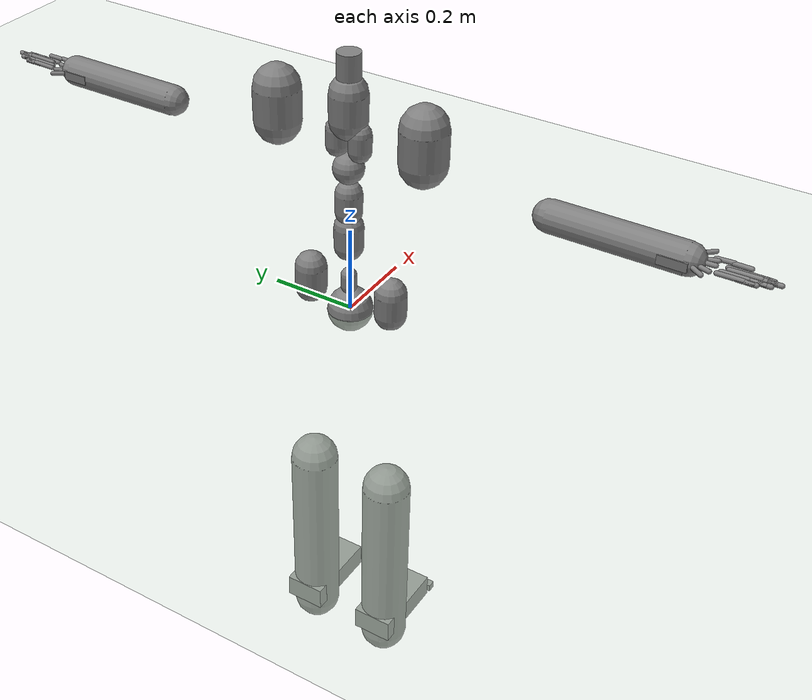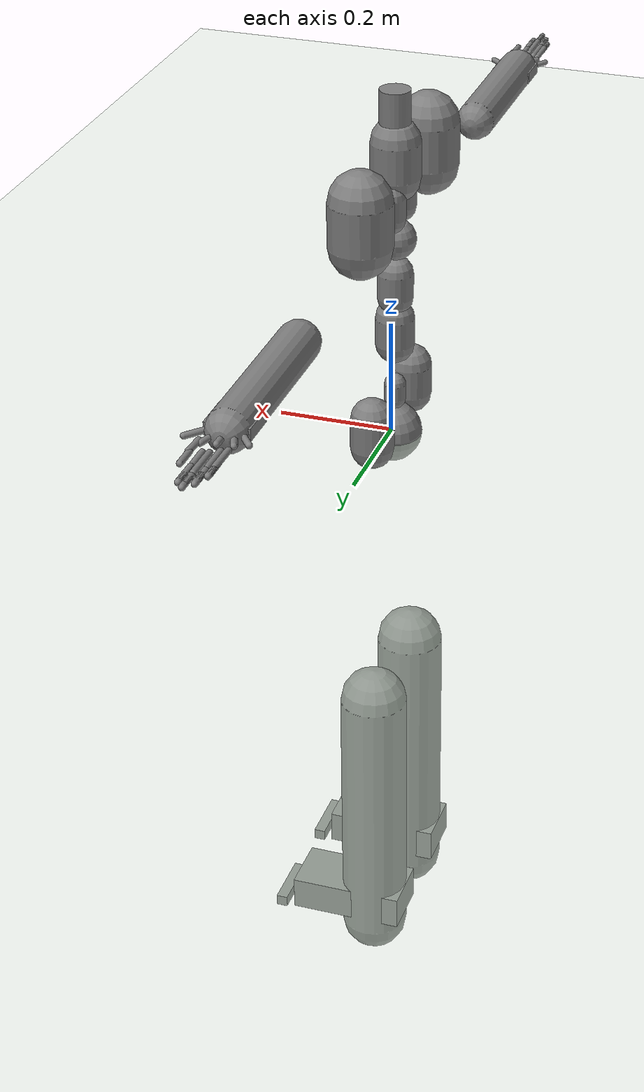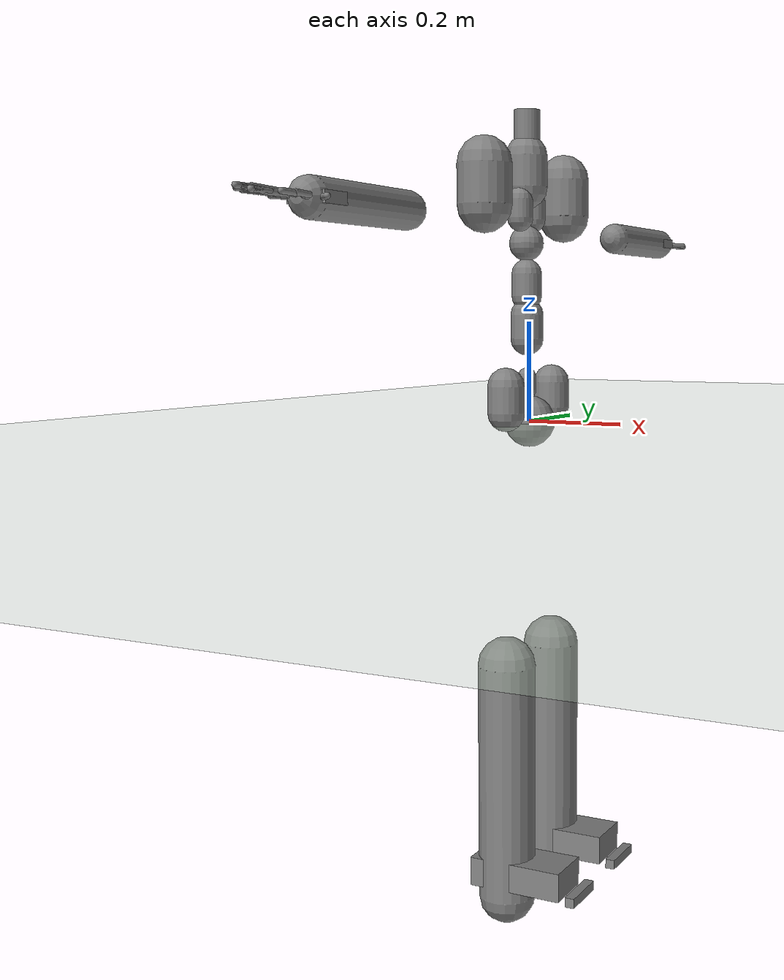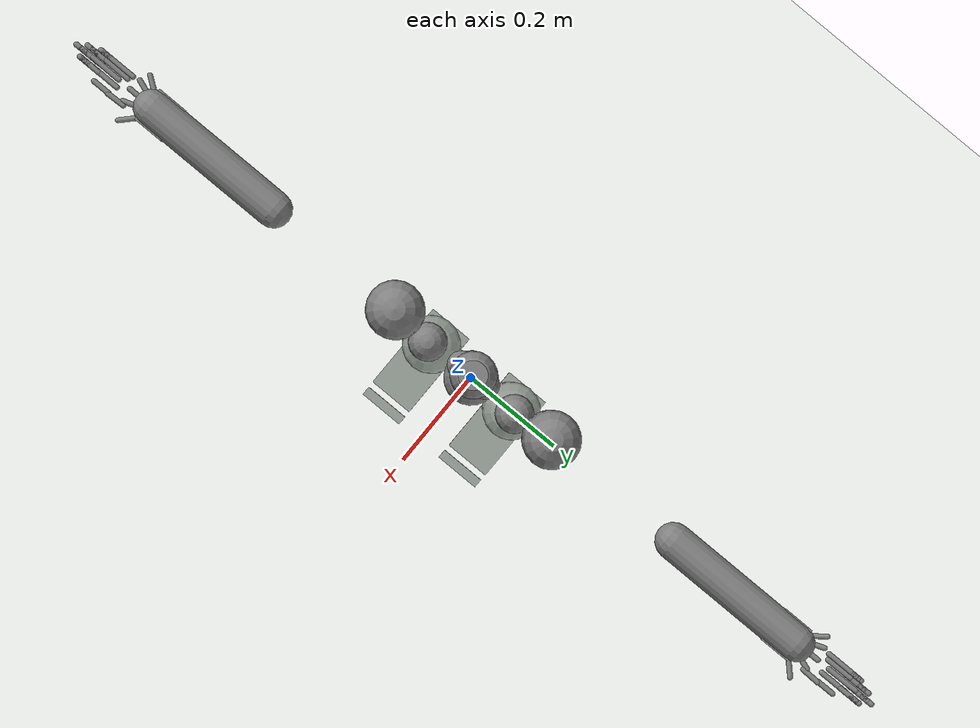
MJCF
<?xml version="1.0" ?>
<mujoco model="humanoid">
  <compiler coordinate="local"/>
  <statistic extent="2" center="0 0 1"/>
  <option timestep="0.00555"/>
  <default>
    <motor ctrlrange="-1 1" ctrllimited="true"/>
    <geom type="capsule" condim="1" friction="1.0 0.05 0.05" solimp=".9 .99 .003" solref=".015 1"/>
    <joint type="hinge" damping="0.1" stiffness="5" armature=".007" limited="true" solimplimit="0 .99 .01"/>
    <site size=".04" group="3"/>
  </default>
  <asset>
    <texture type="skybox" builtin="gradient" rgb1=".4 .5 .6" rgb2="0 0 0" width="100" height="100"/>
    <texture builtin="flat" height="1278" mark="cross" markrgb="1 1 1" name="texgeom" random="0.01" rgb1="0.8 0.6 0.4" rgb2="0.8 0.6 0.4" type="cube" width="127"/>
    <texture builtin="checker" height="100" name="texplane" rgb1="0 0 0" rgb2="0.8 0.8 0.8" type="2d" width="100"/>
    <material name="MatPlane" reflectance="0.5" shininess="1" specular="1" texrepeat="60 60" texture="texplane"/>
    <material name="geom" texture="texgeom" texuniform="true"/>
  </asset>
  <worldbody>
    <light cutoff="100" diffuse="1 1 1" dir="-0 0 -1.3" directional="true" exponent="1" pos="0 0 1.3" specular=".1 .1 .1"/>
    <geom conaffinity="1" condim="3" name="floor" pos="0 0 0" rgba="0.8 0.9 0.8 1" size="100 100 .2" type="plane" material="MatPlane"/>
    <body name="pHipOrigin" pos="0 0 0">
      <freejoint name="pHipOrigin"/>
      <geom type="sphere" contype="1" conaffinity="1" density="4629.6296296296305" size="0.05199" pos="0.0000 0.0000 -0.0000"/>
      <body name="jL5S1" pos="-0.00585868 0 0.05272800">
        <geom type="capsule" contype="1" conaffinity="1" density="1000" fromto="0 0 0.01061 0 0 0.03714" size="0.01857"/>
        <joint name="jL5S1_x" type="hinge" pos="0 0 0" axis="1 0 0" stiffness="500" damping="500" armature="0.02" range="-180.0000 180.0000"/>
        <joint name="jL5S1_y" type="hinge" pos="0 0 0" axis="0 1 0" stiffness="500" damping="500" armature="0.02" range="-180.0000 180.0000"/>
        <joint name="jL5S1_z" type="hinge" pos="0 0 0" axis="0 0 1" stiffness="500" damping="500" armature="0.02" range="-180.0000 180.0000"/>
        <body name="jL4L3" pos="0 0 0.09475293">
          <geom type="capsule" contype="1" conaffinity="1" density="1000" fromto="0 0 0.01895 0 0 0.06633" size="0.03316"/>
          <joint name="jL4L3_x" type="hinge" pos="0 0 0" axis="1 0 0" stiffness="500" damping="500" armature="0.02" range="-180.0000 180.0000"/>
          <joint name="jL4L3_y" type="hinge" pos="0 0 0" axis="0 1 0" stiffness="500" damping="500" armature="0.02" range="-180.0000 180.0000"/>
          <joint name="jL4L3_z" type="hinge" pos="0 0 0" axis="0 0 1" stiffness="500" damping="500" armature="0.02" range="-180.0000 180.0000"/>
          <body name="jL1T12" pos="-0.00066951 0 0.08677981">
            <geom type="capsule" contype="1" conaffinity="1" density="1000" fromto="0 0 0.01736 0 0 0.06075" size="0.03037"/>
            <joint name="jL1T12_x" type="hinge" pos="0 0 0" axis="1 0 0" stiffness="500" damping="500" armature="0.02" range="-180.0000 180.0000"/>
            <joint name="jL1T12_y" type="hinge" pos="0 0 0" axis="0 1 0" stiffness="500" damping="500" armature="0.02" range="-180.0000 180.0000"/>
            <joint name="jL1T12_z" type="hinge" pos="0 0 0" axis="0 0 1" stiffness="500" damping="500" armature="0.02" range="-180.0000 180.0000"/>
            <body name="jT9T8" pos="-0.00067087 0 0.08678785">
              <geom type="sphere" contype="1" conaffinity="1" density="1000" size="0.03472" pos="0.000 0.0000 0.034716"/>
              <joint name="jT9T8_x" type="hinge" pos="0 0 0" axis="1 0 0" stiffness="500" damping="500" armature="0.02" range="-180.0000 180.0000"/>
              <joint name="jT9T8_y" type="hinge" pos="0 0 0" axis="0 1 0" stiffness="500" damping="500" armature="0.02" range="-180.0000 180.0000"/>
              <joint name="jT9T8_z" type="hinge" pos="0 0 0" axis="0 0 1" stiffness="500" damping="500" armature="0.02" range="-180.0000 180.0000"/>
              <body name="jT1C7" pos="0 0 0.11972699">
                <geom type="capsule" contype="1" conaffinity="1" density="1000" fromto="0 0 0.02395 0 0 0.08381" size="0.04190"/>
                <joint name="jT1C7_x" type="hinge" pos="0 0 0" axis="1 0 0" stiffness="500" damping="500" armature="0.02" range="-180.0000 180.0000"/>
                <joint name="jT1C7_y" type="hinge" pos="0 0 0" axis="0 1 0" stiffness="500" damping="500" armature="0.02" range="-180.0000 180.0000"/>
                <joint name="jT1C7_z" type="hinge" pos="0 0 0" axis="0 0 1" stiffness="500" damping="500" armature="0.02" range="-180.0000 180.0000"/>
                <body name="jC1Head" pos="0.00101836 0 0.08631906">
                  <geom type="cylinder" contype="1" conaffinity="1" density="1000" fromto="0 0 0 0 0 0.08633" size="0.02590"/>
                  <joint name="jC1Head_x" type="hinge" pos="0 0 0" axis="1 0 0" stiffness="500" damping="500" armature="0.02" range="-180.0000 180.0000"/>
                  <joint name="jC1Head_y" type="hinge" pos="0 0 0" axis="0 1 0" stiffness="500" damping="500" armature="0.02" range="-180.0000 180.0000"/>
                  <joint name="jC1Head_z" type="hinge" pos="0 0 0" axis="0 0 1" stiffness="500" damping="500" armature="0.02" range="-180.0000 180.0000"/>
                </body>
              </body>
              <body name="jRightT4Shoulder" pos="0 -0.02771717 0.06758054">
                <geom type="capsule" contype="1" conaffinity="1" density="1000" fromto="0 0 0.01461 0 0 0.05113" size="0.02557"/>
                <joint name="jRightT4Shoulder_x" type="hinge" pos="0 0 0" axis="1 0 0" stiffness="500" damping="500" armature="0.02" range="-180.0000 180.0000"/>
                <joint name="jRightT4Shoulder_y" type="hinge" pos="0 0 0" axis="0 1 0" stiffness="500" damping="500" armature="0.02" range="-180.0000 180.0000"/>
                <joint name="jRightT4Shoulder_z" type="hinge" pos="0 0 0" axis="0 0 1" stiffness="500" damping="500" armature="0.02" range="-180.0000 180.0000"/>
                <body name="jRightShoulder" pos="0 -0.14999203 0">
                  <geom type="capsule" contype="1" conaffinity="1" density="1000" fromto="0 0 0.03000 0 0 0.10499" size="0.05250"/>
                  <joint name="jRightShoulder_x" type="hinge" pos="0 0 0" axis="1 0 0" stiffness="500" damping="500" armature="0.02" range="-180.0000 180.0000"/>
                  <joint name="jRightShoulder_y" type="hinge" pos="0 0 0" axis="0 1 0" stiffness="500" damping="500" armature="0.02" range="-180.0000 180.0000"/>
                  <joint name="jRightShoulder_z" type="hinge" pos="0 0 0" axis="0 0 1" stiffness="500" damping="500" armature="0.02" range="-180.0000 180.0000"/>
                  <body name="jRightElbow" pos="0 -0.28135192 0">
                    <geom type="capsule" contype="1" conaffinity="1" density="1000" fromto="0 0 0 0.00000000 -0.28135192 0.00000000" size="0.03376"/>
                    <joint name="jRightElbow_x" type="hinge" pos="0 0 0" axis="1 0 0" stiffness="500" damping="500" armature="0.02" range="-180.0000 180.0000"/>
                    <joint name="jRightElbow_y" type="hinge" pos="0 0 0" axis="0 1 0" stiffness="500" damping="500" armature="0.02" range="-180.0000 180.0000"/>
                    <joint name="jRightElbow_z" type="hinge" pos="0 0 0" axis="0 0 1" stiffness="500" damping="500" armature="0.02" range="-180.0000 180.0000"/>
                    <body name="jRightWrist" pos="0.00010500 -0.26088614 0">
                      <geom density="1000" type="box" pos="0 0 0" size="0.035 0.03 0.01" quat="1.0000 0.0000 0.0000 0.0000"/>
                      <joint name="jRightWrist_x" type="hinge" pos="0 0 0" axis="1 0 0" stiffness="500" damping="500" armature="0.02" range="-180.0000 180.0000"/>
                      <joint name="jRightWrist_y" type="hinge" pos="0 0 0" axis="0 1 0" stiffness="500" damping="500" armature="0.02" range="-180.0000 180.0000"/>
                      <joint name="jRightWrist_z" type="hinge" pos="0 0 0" axis="0 0 1" stiffness="500" damping="500" armature="0.02" range="-180.0000 180.0000"/>
                      <body name="jRightFirstCMC" pos="0.02750400 -0.02636413 -0.00124555">
                        <geom type="capsule" contype="1" conaffinity="1" density="1000" fromto="0 0 0 0.02750400 -0.02636413 -0.00124555" size="0.005"/>
                        <joint name="jRightFirstCMC_x" type="hinge" pos="0 0 0" axis="1 0 0" stiffness="500" damping="500" armature="0.02" range="-180.0000 180.0000"/>
                        <joint name="jRightFirstCMC_y" type="hinge" pos="0 0 0" axis="0 1 0" stiffness="500" damping="500" armature="0.02" range="-180.0000 180.0000"/>
                        <joint name="jRightFirstCMC_z" type="hinge" pos="0 0 0" axis="0 0 1" stiffness="500" damping="500" armature="0.02" range="-180.0000 180.0000"/>
                        <body name="jRightFirstMCP" pos="0.00124500 -0.03513295 0.00074236">
                          <geom type="capsule" contype="1" conaffinity="1" density="1000" fromto="0 0 0 0.00124500 -0.03513295 0.00074236" size="0.005"/>
                          <joint name="jRightFirstMCP_x" type="hinge" pos="0 0 0" axis="1 0 0" stiffness="500" damping="500" armature="0.02" range="-180.0000 180.0000"/>
                          <joint name="jRightFirstMCP_y" type="hinge" pos="0 0 0" axis="0 1 0" stiffness="500" damping="500" armature="0.02" range="-180.0000 180.0000"/>
                          <joint name="jRightFirstMCP_z" type="hinge" pos="0 0 0" axis="0 0 1" stiffness="500" damping="500" armature="0.02" range="-180.0000 180.0000"/>
                          <body name="jRightIP" pos="0 -0.03403175 0">
                            <geom type="capsule" contype="1" conaffinity="1" density="1000" fromto="0 0 0 0.00000000 -0.03403175 0.00000000" size="0.005"/>
                            <joint name="jRightIP_x" type="hinge" pos="0 0 0" axis="1 0 0" stiffness="500" damping="500" armature="0.02" range="-180.0000 180.0000"/>
                            <joint name="jRightIP_y" type="hinge" pos="0 0 0" axis="0 1 0" stiffness="500" damping="500" armature="0.02" range="-180.0000 180.0000"/>
                            <joint name="jRightIP_z" type="hinge" pos="0 0 0" axis="0 0 1" stiffness="500" damping="500" armature="0.02" range="-180.0000 180.0000"/>
                          </body>
                        </body>
                      </body>
                      <body name="jRightSecondCMC" pos="0.01170401 -0.03419542 -0.00059645">
                        <geom type="capsule" contype="1" conaffinity="1" density="1000" fromto="0 0 0 0.01170401 -0.03419542 -0.00059645" size="0.005"/>
                        <joint name="jRightSecondCMC_x" type="hinge" pos="0 0 0" axis="1 0 0" stiffness="500" damping="500" armature="0.02" range="-180.0000 180.0000"/>
                        <joint name="jRightSecondCMC_y" type="hinge" pos="0 0 0" axis="0 1 0" stiffness="500" damping="500" armature="0.02" range="-180.0000 180.0000"/>
                        <joint name="jRightSecondCMC_z" type="hinge" pos="0 0 0" axis="0 0 1" stiffness="500" damping="500" armature="0.02" range="-180.0000 180.0000"/>
                        <body name="jRightSecondMCP" pos="-0.00035664 -0.05688193 -0.00059005">
                          <geom type="capsule" contype="1" conaffinity="1" density="1000" fromto="0 0 0 -0.00035664 -0.05688193 -0.00059005" size="0.005"/>
                          <joint name="jRightSecondMCP_x" type="hinge" pos="0 0 0" axis="1 0 0" stiffness="500" damping="500" armature="0.02" range="-180.0000 180.0000"/>
                          <joint name="jRightSecondMCP_y" type="hinge" pos="0 0 0" axis="0 1 0" stiffness="500" damping="500" armature="0.02" range="-180.0000 180.0000"/>
                          <joint name="jRightSecondMCP_z" type="hinge" pos="0 0 0" axis="0 0 1" stiffness="500" damping="500" armature="0.02" range="-180.0000 180.0000"/>
                          <body name="jRightSecondPIP" pos="0 -0.04115187 0">
                            <geom type="capsule" contype="1" conaffinity="1" density="1000" fromto="0 0 0 0.00000000 -0.04115187 0.00000000" size="0.005"/>
                            <joint name="jRightSecondPIP_x" type="hinge" pos="0 0 0" axis="1 0 0" stiffness="500" damping="500" armature="0.02" range="-180.0000 180.0000"/>
                            <joint name="jRightSecondPIP_y" type="hinge" pos="0 0 0" axis="0 1 0" stiffness="500" damping="500" armature="0.02" range="-180.0000 180.0000"/>
                            <joint name="jRightSecondPIP_z" type="hinge" pos="0 0 0" axis="0 0 1" stiffness="500" damping="500" armature="0.02" range="-180.0000 180.0000"/>
                            <body name="jRightSecondDIP" pos="0 -0.02246177 0">
                              <geom type="capsule" contype="1" conaffinity="1" density="1000" fromto="0 0 0 0.00000000 -0.02246177 0.00000000" size="0.005"/>
                              <joint name="jRightSecondDIP_x" type="hinge" pos="0 0 0" axis="1 0 0" stiffness="500" damping="500" armature="0.02" range="-180.0000 180.0000"/>
                              <joint name="jRightSecondDIP_y" type="hinge" pos="0 0 0" axis="0 1 0" stiffness="500" damping="500" armature="0.02" range="-180.0000 180.0000"/>
                              <joint name="jRightSecondDIP_z" type="hinge" pos="0 0 0" axis="0 0 1" stiffness="500" damping="500" armature="0.02" range="-180.0000 180.0000"/>
                            </body>
                          </body>
                        </body>
                      </body>
                      <body name="jRightThirdCMC" pos="-0.00066439 -0.03592881 0.00151050">
                        <geom type="capsule" contype="1" conaffinity="1" density="1000" fromto="0 0 0 -0.00066439 -0.03592881 0.00151050" size="0.005"/>
                        <joint name="jRightThirdCMC_x" type="hinge" pos="0 0 0" axis="1 0 0" stiffness="500" damping="500" armature="0.02" range="-180.0000 180.0000"/>
                        <joint name="jRightThirdCMC_y" type="hinge" pos="0 0 0" axis="0 1 0" stiffness="500" damping="500" armature="0.02" range="-180.0000 180.0000"/>
                        <joint name="jRightThirdCMC_z" type="hinge" pos="0 0 0" axis="0 0 1" stiffness="500" damping="500" armature="0.02" range="-180.0000 180.0000"/>
                        <body name="jRightThirdMCP" pos="-0.00073107 -0.06056933 0.00164786">
                          <geom type="capsule" contype="1" conaffinity="1" density="1000" fromto="0 0 0 -0.00073107 -0.06056933 0.00164786" size="0.005"/>
                          <joint name="jRightThirdMCP_x" type="hinge" pos="0 0 0" axis="1 0 0" stiffness="500" damping="500" armature="0.02" range="-180.0000 180.0000"/>
                          <joint name="jRightThirdMCP_y" type="hinge" pos="0 0 0" axis="0 1 0" stiffness="500" damping="500" armature="0.02" range="-180.0000 180.0000"/>
                          <joint name="jRightThirdMCP_z" type="hinge" pos="0 0 0" axis="0 0 1" stiffness="500" damping="500" armature="0.02" range="-180.0000 180.0000"/>
                          <body name="jRightThirdPIP" pos="0 -0.04492609 0">
                            <geom type="capsule" contype="1" conaffinity="1" density="1000" fromto="0 0 0 0.00000000 -0.04492609 0.00000000" size="0.005"/>
                            <joint name="jRightThirdPIP_x" type="hinge" pos="0 0 0" axis="1 0 0" stiffness="500" damping="500" armature="0.02" range="-180.0000 180.0000"/>
                            <joint name="jRightThirdPIP_y" type="hinge" pos="0 0 0" axis="0 1 0" stiffness="500" damping="500" armature="0.02" range="-180.0000 180.0000"/>
                            <joint name="jRightThirdPIP_z" type="hinge" pos="0 0 0" axis="0 0 1" stiffness="500" damping="500" armature="0.02" range="-180.0000 180.0000"/>
                            <body name="jRightThirdDIP" pos="0 -0.02659932 0">
                              <geom type="capsule" contype="1" conaffinity="1" density="1000" fromto="0 0 0 0.00000000 -0.02659932 0.00000000" size="0.005"/>
                              <joint name="jRightThirdDIP_x" type="hinge" pos="0 0 0" axis="1 0 0" stiffness="500" damping="500" armature="0.02" range="-180.0000 180.0000"/>
                              <joint name="jRightThirdDIP_y" type="hinge" pos="0 0 0" axis="0 1 0" stiffness="500" damping="500" armature="0.02" range="-180.0000 180.0000"/>
                              <joint name="jRightThirdDIP_z" type="hinge" pos="0 0 0" axis="0 0 1" stiffness="500" damping="500" armature="0.02" range="-180.0000 180.0000"/>
                            </body>
                          </body>
                        </body>
                      </body>
                      <body name="jRightFourthCMC" pos="-0.01218839 -0.03394667 0.00079905">
                        <geom type="capsule" contype="1" conaffinity="1" density="1000" fromto="0 0 0 -0.01218839 -0.03394667 0.00079905" size="0.005"/>
                        <joint name="jRightFourthCMC_x" type="hinge" pos="0 0 0" axis="1 0 0" stiffness="500" damping="500" armature="0.02" range="-180.0000 180.0000"/>
                        <joint name="jRightFourthCMC_y" type="hinge" pos="0 0 0" axis="0 1 0" stiffness="500" damping="500" armature="0.02" range="-180.0000 180.0000"/>
                        <joint name="jRightFourthCMC_z" type="hinge" pos="0 0 0" axis="0 0 1" stiffness="500" damping="500" armature="0.02" range="-180.0000 180.0000"/>
                        <body name="jRightFourthMCP" pos="-0.00037493 -0.05138752 0.00080734">
                          <geom type="capsule" contype="1" conaffinity="1" density="1000" fromto="0 0 0 -0.00037493 -0.05138752 0.00080734" size="0.005"/>
                          <joint name="jRightFourthMCP_x" type="hinge" pos="0 0 0" axis="1 0 0" stiffness="500" damping="500" armature="0.02" range="-180.0000 180.0000"/>
                          <joint name="jRightFourthMCP_y" type="hinge" pos="0 0 0" axis="0 1 0" stiffness="500" damping="500" armature="0.02" range="-180.0000 180.0000"/>
                          <joint name="jRightFourthMCP_z" type="hinge" pos="0 0 0" axis="0 0 1" stiffness="500" damping="500" armature="0.02" range="-180.0000 180.0000"/>
                          <body name="jRightFourthPIP" pos="0 -0.04275878 0">
                            <geom type="capsule" contype="1" conaffinity="1" density="1000" fromto="0 0 0 0.00000000 -0.04275878 0.00000000" size="0.005"/>
                            <joint name="jRightFourthPIP_x" type="hinge" pos="0 0 0" axis="1 0 0" stiffness="500" damping="500" armature="0.02" range="-180.0000 180.0000"/>
                            <joint name="jRightFourthPIP_y" type="hinge" pos="0 0 0" axis="0 1 0" stiffness="500" damping="500" armature="0.02" range="-180.0000 180.0000"/>
                            <joint name="jRightFourthPIP_z" type="hinge" pos="0 0 0" axis="0 0 1" stiffness="500" damping="500" armature="0.02" range="-180.0000 180.0000"/>
                            <body name="jRightFourthDIP" pos="0 -0.02535808 0">
                              <geom type="capsule" contype="1" conaffinity="1" density="1000" fromto="0 0 0 0.00000000 -0.02535808 0.00000000" size="0.005"/>
                              <joint name="jRightFourthDIP_x" type="hinge" pos="0 0 0" axis="1 0 0" stiffness="500" damping="500" armature="0.02" range="-180.0000 180.0000"/>
                              <joint name="jRightFourthDIP_y" type="hinge" pos="0 0 0" axis="0 1 0" stiffness="500" damping="500" armature="0.02" range="-180.0000 180.0000"/>
                              <joint name="jRightFourthDIP_z" type="hinge" pos="0 0 0" axis="0 0 1" stiffness="500" damping="500" armature="0.02" range="-180.0000 180.0000"/>
                            </body>
                          </body>
                        </body>
                      </body>
                      <body name="jRightFifthCMC" pos="-0.02135821 -0.02976023 0.00058707">
                        <geom type="capsule" contype="1" conaffinity="1" density="1000" fromto="0 0 0 -0.02135821 -0.02976023 0.00058707" size="0.005"/>
                        <joint name="jRightFifthCMC_x" type="hinge" pos="0 0 0" axis="1 0 0" stiffness="500" damping="500" armature="0.02" range="-180.0000 180.0000"/>
                        <joint name="jRightFifthCMC_y" type="hinge" pos="0 0 0" axis="0 1 0" stiffness="500" damping="500" armature="0.02" range="-180.0000 180.0000"/>
                        <joint name="jRightFifthCMC_z" type="hinge" pos="0 0 0" axis="0 0 1" stiffness="500" damping="500" armature="0.02" range="-180.0000 180.0000"/>
                        <body name="jRightFifthMCP" pos="-0.00000749 -0.05073534 0.00069818">
                          <geom type="capsule" contype="1" conaffinity="1" density="1000" fromto="0 0 0 -0.00000749 -0.05073534 0.00069818" size="0.005"/>
                          <joint name="jRightFifthMCP_x" type="hinge" pos="0 0 0" axis="1 0 0" stiffness="500" damping="500" armature="0.02" range="-180.0000 180.0000"/>
                          <joint name="jRightFifthMCP_y" type="hinge" pos="0 0 0" axis="0 1 0" stiffness="500" damping="500" armature="0.02" range="-180.0000 180.0000"/>
                          <joint name="jRightFifthMCP_z" type="hinge" pos="0 0 0" axis="0 0 1" stiffness="500" damping="500" armature="0.02" range="-180.0000 180.0000"/>
                          <body name="jRightFifthPIP" pos="0 -0.03569403 0">
                            <geom type="capsule" contype="1" conaffinity="1" density="1000" fromto="0 0 0 0.00000000 -0.03569403 0.00000000" size="0.005"/>
                            <joint name="jRightFifthPIP_x" type="hinge" pos="0 0 0" axis="1 0 0" stiffness="500" damping="500" armature="0.02" range="-180.0000 180.0000"/>
                            <joint name="jRightFifthPIP_y" type="hinge" pos="0 0 0" axis="0 1 0" stiffness="500" damping="500" armature="0.02" range="-180.0000 180.0000"/>
                            <joint name="jRightFifthPIP_z" type="hinge" pos="0 0 0" axis="0 0 1" stiffness="500" damping="500" armature="0.02" range="-180.0000 180.0000"/>
                            <body name="jRightFifthDIP" pos="0 -0.01937495 0">
                              <geom type="capsule" contype="1" conaffinity="1" density="1000" fromto="0 0 0 0.00000000 -0.01937495 0.00000000" size="0.005"/>
                              <joint name="jRightFifthDIP_x" type="hinge" pos="0 0 0" axis="1 0 0" stiffness="500" damping="500" armature="0.02" range="-180.0000 180.0000"/>
                              <joint name="jRightFifthDIP_y" type="hinge" pos="0 0 0" axis="0 1 0" stiffness="500" damping="500" armature="0.02" range="-180.0000 180.0000"/>
                              <joint name="jRightFifthDIP_z" type="hinge" pos="0 0 0" axis="0 0 1" stiffness="500" damping="500" armature="0.02" range="-180.0000 180.0000"/>
                            </body>
                          </body>
                        </body>
                      </body>
                    </body>
                  </body>
                </body>
              </body>
              <body name="jLeftT4Shoulder" pos="0 0.02760788 0.06731408">
                <geom type="capsule" contype="1" conaffinity="1" density="1000" fromto="0 0 0.01455 0 0 0.05093" size="0.02546"/>
                <joint name="jLeftT4Shoulder_x" type="hinge" pos="0 0 0" axis="1 0 0" stiffness="500" damping="500" armature="0.02" range="-180.0000 180.0000"/>
                <joint name="jLeftT4Shoulder_y" type="hinge" pos="0 0 0" axis="0 1 0" stiffness="500" damping="500" armature="0.02" range="-180.0000 180.0000"/>
                <joint name="jLeftT4Shoulder_z" type="hinge" pos="0 0 0" axis="0 0 1" stiffness="500" damping="500" armature="0.02" range="-180.0000 180.0000"/>
                <body name="jLeftShoulder" pos="0 0.14991455 0">
                  <geom type="capsule" contype="1" conaffinity="1" density="1000" fromto="0 0 0.02998 0 0 0.10494" size="0.05247"/>
                  <joint name="jLeftShoulder_x" type="hinge" pos="0 0 0" axis="1 0 0" stiffness="500" damping="500" armature="0.02" range="-180.0000 180.0000"/>
                  <joint name="jLeftShoulder_y" type="hinge" pos="0 0 0" axis="0 1 0" stiffness="500" damping="500" armature="0.02" range="-180.0000 180.0000"/>
                  <joint name="jLeftShoulder_z" type="hinge" pos="0 0 0" axis="0 0 1" stiffness="500" damping="500" armature="0.02" range="-180.0000 180.0000"/>
                  <body name="jLeftElbow" pos="0 0.28277218 0">
                    <geom type="capsule" contype="1" conaffinity="1" density="1000" fromto="0 0 0 0.00000000 0.28277218 0.00000000" size="0.03393"/>
                    <joint name="jLeftElbow_x" type="hinge" pos="0 0 0" axis="1 0 0" stiffness="500" damping="500" armature="0.02" range="-180.0000 180.0000"/>
                    <joint name="jLeftElbow_y" type="hinge" pos="0 0 0" axis="0 1 0" stiffness="500" damping="500" armature="0.02" range="-180.0000 180.0000"/>
                    <joint name="jLeftElbow_z" type="hinge" pos="0 0 0" axis="0 0 1" stiffness="500" damping="500" armature="0.02" range="-180.0000 180.0000"/>
                    <body name="jLeftWrist" pos="0.00010449 0.25962389 0">
                      <geom density="1000" type="box" pos="0 0 0" size="0.035 0.03 0.01" quat="1.0000 0.0000 0.0000 0.0000"/>
                      <joint name="jLeftWrist_x" type="hinge" pos="0 0 0" axis="1 0 0" stiffness="500" damping="500" armature="0.02" range="-180.0000 180.0000"/>
                      <joint name="jLeftWrist_y" type="hinge" pos="0 0 0" axis="0 1 0" stiffness="500" damping="500" armature="0.02" range="-180.0000 180.0000"/>
                      <joint name="jLeftWrist_z" type="hinge" pos="0 0 0" axis="0 0 1" stiffness="500" damping="500" armature="0.02" range="-180.0000 180.0000"/>
                      <body name="jLeftFirstCMC" pos="0.02691994 0.02698351 -0.00120485">
                        <geom type="capsule" contype="1" conaffinity="1" density="1000" fromto="0 0 0 0.02691994 0.02698351 -0.00120485" size="0.005"/>
                        <joint name="jLeftFirstCMC_x" type="hinge" pos="0 0 0" axis="1 0 0" stiffness="500" damping="500" armature="0.02" range="-180.0000 180.0000"/>
                        <joint name="jLeftFirstCMC_y" type="hinge" pos="0 0 0" axis="0 1 0" stiffness="500" damping="500" armature="0.02" range="-180.0000 180.0000"/>
                        <joint name="jLeftFirstCMC_z" type="hinge" pos="0 0 0" axis="0 0 1" stiffness="500" damping="500" armature="0.02" range="-180.0000 180.0000"/>
                        <body name="jLeftFirstMCP" pos="0.00123300 0.03513216 0.00072346">
                          <geom type="capsule" contype="1" conaffinity="1" density="1000" fromto="0 0 0 0.00123300 0.03513216 0.00072346" size="0.005"/>
                          <joint name="jLeftFirstMCP_x" type="hinge" pos="0 0 0" axis="1 0 0" stiffness="500" damping="500" armature="0.02" range="-180.0000 180.0000"/>
                          <joint name="jLeftFirstMCP_y" type="hinge" pos="0 0 0" axis="0 1 0" stiffness="500" damping="500" armature="0.02" range="-180.0000 180.0000"/>
                          <joint name="jLeftFirstMCP_z" type="hinge" pos="0 0 0" axis="0 0 1" stiffness="500" damping="500" armature="0.02" range="-180.0000 180.0000"/>
                          <body name="jLeftIP" pos="0 0.03403175 0">
                            <geom type="capsule" contype="1" conaffinity="1" density="1000" fromto="0 0 0 0.00000000 0.03403175 0.00000000" size="0.005"/>
                            <joint name="jLeftIP_x" type="hinge" pos="0 0 0" axis="1 0 0" stiffness="500" damping="500" armature="0.02" range="-180.0000 180.0000"/>
                            <joint name="jLeftIP_y" type="hinge" pos="0 0 0" axis="0 1 0" stiffness="500" damping="500" armature="0.02" range="-180.0000 180.0000"/>
                            <joint name="jLeftIP_z" type="hinge" pos="0 0 0" axis="0 0 1" stiffness="500" damping="500" armature="0.02" range="-180.0000 180.0000"/>
                          </body>
                        </body>
                      </body>
                      <body name="jLeftSecondCMC" pos="0.01183882 0.03413250 -0.00060138">
                        <geom type="capsule" contype="1" conaffinity="1" density="1000" fromto="0 0 0 0.01183882 0.03413250 -0.00060138" size="0.005"/>
                        <joint name="jLeftSecondCMC_x" type="hinge" pos="0 0 0" axis="1 0 0" stiffness="500" damping="500" armature="0.02" range="-180.0000 180.0000"/>
                        <joint name="jLeftSecondCMC_y" type="hinge" pos="0 0 0" axis="0 1 0" stiffness="500" damping="500" armature="0.02" range="-180.0000 180.0000"/>
                        <joint name="jLeftSecondCMC_z" type="hinge" pos="0 0 0" axis="0 0 1" stiffness="500" damping="500" armature="0.02" range="-180.0000 180.0000"/>
                        <body name="jLeftSecondMCP" pos="-0.00031097 0.05688309 -0.00059734">
                          <geom type="capsule" contype="1" conaffinity="1" density="1000" fromto="0 0 0 -0.00031097 0.05688309 -0.00059734" size="0.005"/>
                          <joint name="jLeftSecondMCP_x" type="hinge" pos="0 0 0" axis="1 0 0" stiffness="500" damping="500" armature="0.02" range="-180.0000 180.0000"/>
                          <joint name="jLeftSecondMCP_y" type="hinge" pos="0 0 0" axis="0 1 0" stiffness="500" damping="500" armature="0.02" range="-180.0000 180.0000"/>
                          <joint name="jLeftSecondMCP_z" type="hinge" pos="0 0 0" axis="0 0 1" stiffness="500" damping="500" armature="0.02" range="-180.0000 180.0000"/>
                          <body name="jLeftSecondPIP" pos="0 0.04115187 0">
                            <geom type="capsule" contype="1" conaffinity="1" density="1000" fromto="0 0 0 0.00000000 0.04115187 0.00000000" size="0.005"/>
                            <joint name="jLeftSecondPIP_x" type="hinge" pos="0 0 0" axis="1 0 0" stiffness="500" damping="500" armature="0.02" range="-180.0000 180.0000"/>
                            <joint name="jLeftSecondPIP_y" type="hinge" pos="0 0 0" axis="0 1 0" stiffness="500" damping="500" armature="0.02" range="-180.0000 180.0000"/>
                            <joint name="jLeftSecondPIP_z" type="hinge" pos="0 0 0" axis="0 0 1" stiffness="500" damping="500" armature="0.02" range="-180.0000 180.0000"/>
                            <body name="jLeftSecondDIP" pos="0 0.02246177 0">
                              <geom type="capsule" contype="1" conaffinity="1" density="1000" fromto="0 0 0 0.00000000 0.02246177 0.00000000" size="0.005"/>
                              <joint name="jLeftSecondDIP_x" type="hinge" pos="0 0 0" axis="1 0 0" stiffness="500" damping="500" armature="0.02" range="-180.0000 180.0000"/>
                              <joint name="jLeftSecondDIP_y" type="hinge" pos="0 0 0" axis="0 1 0" stiffness="500" damping="500" armature="0.02" range="-180.0000 180.0000"/>
                              <joint name="jLeftSecondDIP_z" type="hinge" pos="0 0 0" axis="0 0 1" stiffness="500" damping="500" armature="0.02" range="-180.0000 180.0000"/>
                            </body>
                          </body>
                        </body>
                      </body>
                      <body name="jLeftThirdCMC" pos="-0.00066829 0.03593204 0.00146015">
                        <geom type="capsule" contype="1" conaffinity="1" density="1000" fromto="0 0 0 -0.00066829 0.03593204 0.00146015" size="0.005"/>
                        <joint name="jLeftThirdCMC_x" type="hinge" pos="0 0 0" axis="1 0 0" stiffness="500" damping="500" armature="0.02" range="-180.0000 180.0000"/>
                        <joint name="jLeftThirdCMC_y" type="hinge" pos="0 0 0" axis="0 1 0" stiffness="500" damping="500" armature="0.02" range="-180.0000 180.0000"/>
                        <joint name="jLeftThirdCMC_z" type="hinge" pos="0 0 0" axis="0 0 1" stiffness="500" damping="500" armature="0.02" range="-180.0000 180.0000"/>
                        <body name="jLeftThirdMCP" pos="-0.00073697 0.06057050 0.00161473">
                          <geom type="capsule" contype="1" conaffinity="1" density="1000" fromto="0 0 0 -0.00073697 0.06057050 0.00161473" size="0.005"/>
                          <joint name="jLeftThirdMCP_x" type="hinge" pos="0 0 0" axis="1 0 0" stiffness="500" damping="500" armature="0.02" range="-180.0000 180.0000"/>
                          <joint name="jLeftThirdMCP_y" type="hinge" pos="0 0 0" axis="0 1 0" stiffness="500" damping="500" armature="0.02" range="-180.0000 180.0000"/>
                          <joint name="jLeftThirdMCP_z" type="hinge" pos="0 0 0" axis="0 0 1" stiffness="500" damping="500" armature="0.02" range="-180.0000 180.0000"/>
                          <body name="jLeftThirdPIP" pos="0 0.04492609 0">
                            <geom type="capsule" contype="1" conaffinity="1" density="1000" fromto="0 0 0 0.00000000 0.04492609 0.00000000" size="0.005"/>
                            <joint name="jLeftThirdPIP_x" type="hinge" pos="0 0 0" axis="1 0 0" stiffness="500" damping="500" armature="0.02" range="-180.0000 180.0000"/>
                            <joint name="jLeftThirdPIP_y" type="hinge" pos="0 0 0" axis="0 1 0" stiffness="500" damping="500" armature="0.02" range="-180.0000 180.0000"/>
                            <joint name="jLeftThirdPIP_z" type="hinge" pos="0 0 0" axis="0 0 1" stiffness="500" damping="500" armature="0.02" range="-180.0000 180.0000"/>
                            <body name="jLeftThirdDIP" pos="0 0.02659932 0">
                              <geom type="capsule" contype="1" conaffinity="1" density="1000" fromto="0 0 0 0.00000000 0.02659932 0.00000000" size="0.005"/>
                              <joint name="jLeftThirdDIP_x" type="hinge" pos="0 0 0" axis="1 0 0" stiffness="500" damping="500" armature="0.02" range="-180.0000 180.0000"/>
                              <joint name="jLeftThirdDIP_y" type="hinge" pos="0 0 0" axis="0 1 0" stiffness="500" damping="500" armature="0.02" range="-180.0000 180.0000"/>
                              <joint name="jLeftThirdDIP_z" type="hinge" pos="0 0 0" axis="0 0 1" stiffness="500" damping="500" armature="0.02" range="-180.0000 180.0000"/>
                            </body>
                          </body>
                        </body>
                      </body>
                      <body name="jLeftFourthCMC" pos="-0.01263562 0.03377303 0.00085298">
                        <geom type="capsule" contype="1" conaffinity="1" density="1000" fromto="0 0 0 -0.01263562 0.03377303 0.00085298" size="0.005"/>
                        <joint name="jLeftFourthCMC_x" type="hinge" pos="0 0 0" axis="1 0 0" stiffness="500" damping="500" armature="0.02" range="-180.0000 180.0000"/>
                        <joint name="jLeftFourthCMC_y" type="hinge" pos="0 0 0" axis="0 1 0" stiffness="500" damping="500" armature="0.02" range="-180.0000 180.0000"/>
                        <joint name="jLeftFourthCMC_z" type="hinge" pos="0 0 0" axis="0 0 1" stiffness="500" damping="500" armature="0.02" range="-180.0000 180.0000"/>
                        <body name="jLeftFourthMCP" pos="-0.00040320 0.05138458 0.00085385">
                          <geom type="capsule" contype="1" conaffinity="1" density="1000" fromto="0 0 0 -0.00040320 0.05138458 0.00085385" size="0.005"/>
                          <joint name="jLeftFourthMCP_x" type="hinge" pos="0 0 0" axis="1 0 0" stiffness="500" damping="500" armature="0.02" range="-180.0000 180.0000"/>
                          <joint name="jLeftFourthMCP_y" type="hinge" pos="0 0 0" axis="0 1 0" stiffness="500" damping="500" armature="0.02" range="-180.0000 180.0000"/>
                          <joint name="jLeftFourthMCP_z" type="hinge" pos="0 0 0" axis="0 0 1" stiffness="500" damping="500" armature="0.02" range="-180.0000 180.0000"/>
                          <body name="jLeftFourthPIP" pos="0 0.04275878 0">
                            <geom type="capsule" contype="1" conaffinity="1" density="1000" fromto="0 0 0 0.00000000 0.04275878 0.00000000" size="0.005"/>
                            <joint name="jLeftFourthPIP_x" type="hinge" pos="0 0 0" axis="1 0 0" stiffness="500" damping="500" armature="0.02" range="-180.0000 180.0000"/>
                            <joint name="jLeftFourthPIP_y" type="hinge" pos="0 0 0" axis="0 1 0" stiffness="500" damping="500" armature="0.02" range="-180.0000 180.0000"/>
                            <joint name="jLeftFourthPIP_z" type="hinge" pos="0 0 0" axis="0 0 1" stiffness="500" damping="500" armature="0.02" range="-180.0000 180.0000"/>
                            <body name="jLeftFourthDIP" pos="0 0.02535808 0">
                              <geom type="capsule" contype="1" conaffinity="1" density="1000" fromto="0 0 0 0.00000000 0.02535808 0.00000000" size="0.005"/>
                              <joint name="jLeftFourthDIP_x" type="hinge" pos="0 0 0" axis="1 0 0" stiffness="500" damping="500" armature="0.02" range="-180.0000 180.0000"/>
                              <joint name="jLeftFourthDIP_y" type="hinge" pos="0 0 0" axis="0 1 0" stiffness="500" damping="500" armature="0.02" range="-180.0000 180.0000"/>
                              <joint name="jLeftFourthDIP_z" type="hinge" pos="0 0 0" axis="0 0 1" stiffness="500" damping="500" armature="0.02" range="-180.0000 180.0000"/>
                            </body>
                          </body>
                        </body>
                      </body>
                      <body name="jLeftFifthCMC" pos="-0.02200523 0.02928974 0.00059651">
                        <geom type="capsule" contype="1" conaffinity="1" density="1000" fromto="0 0 0 -0.02200523 0.02928974 0.00059651" size="0.005"/>
                        <joint name="jLeftFifthCMC_x" type="hinge" pos="0 0 0" axis="1 0 0" stiffness="500" damping="500" armature="0.02" range="-180.0000 180.0000"/>
                        <joint name="jLeftFifthCMC_y" type="hinge" pos="0 0 0" axis="0 1 0" stiffness="500" damping="500" armature="0.02" range="-180.0000 180.0000"/>
                        <joint name="jLeftFifthCMC_z" type="hinge" pos="0 0 0" axis="0 0 1" stiffness="500" damping="500" armature="0.02" range="-180.0000 180.0000"/>
                        <body name="jLeftFifthMCP" pos="-0.00001439 0.05073396 0.00073003">
                          <geom type="capsule" contype="1" conaffinity="1" density="1000" fromto="0 0 0 -0.00001439 0.05073396 0.00073003" size="0.005"/>
                          <joint name="jLeftFifthMCP_x" type="hinge" pos="0 0 0" axis="1 0 0" stiffness="500" damping="500" armature="0.02" range="-180.0000 180.0000"/>
                          <joint name="jLeftFifthMCP_y" type="hinge" pos="0 0 0" axis="0 1 0" stiffness="500" damping="500" armature="0.02" range="-180.0000 180.0000"/>
                          <joint name="jLeftFifthMCP_z" type="hinge" pos="0 0 0" axis="0 0 1" stiffness="500" damping="500" armature="0.02" range="-180.0000 180.0000"/>
                          <body name="jLeftFifthPIP" pos="0 0.03569403 0">
                            <geom type="capsule" contype="1" conaffinity="1" density="1000" fromto="0 0 0 0.00000000 0.03569403 0.00000000" size="0.005"/>
                            <joint name="jLeftFifthPIP_x" type="hinge" pos="0 0 0" axis="1 0 0" stiffness="500" damping="500" armature="0.02" range="-180.0000 180.0000"/>
                            <joint name="jLeftFifthPIP_y" type="hinge" pos="0 0 0" axis="0 1 0" stiffness="500" damping="500" armature="0.02" range="-180.0000 180.0000"/>
                            <joint name="jLeftFifthPIP_z" type="hinge" pos="0 0 0" axis="0 0 1" stiffness="500" damping="500" armature="0.02" range="-180.0000 180.0000"/>
                            <body name="jLeftFifthDIP" pos="0 0.01937495 0">
                              <geom type="capsule" contype="1" conaffinity="1" density="1000" fromto="0 0 0 0.00000000 0.01937495 0.00000000" size="0.005"/>
                              <joint name="jLeftFifthDIP_x" type="hinge" pos="0 0 0" axis="1 0 0" stiffness="500" damping="500" armature="0.02" range="-180.0000 180.0000"/>
                              <joint name="jLeftFifthDIP_y" type="hinge" pos="0 0 0" axis="0 1 0" stiffness="500" damping="500" armature="0.02" range="-180.0000 180.0000"/>
                              <joint name="jLeftFifthDIP_z" type="hinge" pos="0 0 0" axis="0 0 1" stiffness="500" damping="500" armature="0.02" range="-180.0000 180.0000"/>
                            </body>
                          </body>
                        </body>
                      </body>
                    </body>
                  </body>
                </body>
              </body>
            </body>
          </body>
        </body>
      </body>
      <body name="jRightHip" pos="-0.00017664 -0.10482776 0.00159021">
        <geom type="capsule" contype="1" conaffinity="1" density="1000" fromto="0 0 0.02097 0 0 0.07339" size="0.03669"/>
        <joint name="jRightHip_x" type="hinge" pos="0 0 0" axis="1 0 0" stiffness="500" damping="500" armature="0.02" range="-180.0000 180.0000"/>
        <joint name="jRightHip_y" type="hinge" pos="0 0 0" axis="0 1 0" stiffness="500" damping="500" armature="0.02" range="-180.0000 180.0000"/>
        <joint name="jRightHip_z" type="hinge" pos="0 0 0" axis="0 0 1" stiffness="500" damping="500" armature="0.02" range="-180.0000 180.0000"/>
        <body name="jRightKnee" pos="0.00005847 0 -0.49038559">
          <geom type="capsule" contype="1" conaffinity="1" density="1000" fromto="0 0 0 0.00005847 0.00000000 -0.49038559" size="0.05885"/>
          <joint name="jRightKnee_x" type="hinge" pos="0 0 0" axis="1 0 0" stiffness="500" damping="500" armature="0.02" range="-180.0000 180.0000"/>
          <joint name="jRightKnee_y" type="hinge" pos="0 0 0" axis="0 1 0" stiffness="500" damping="500" armature="0.02" range="-180.0000 180.0000"/>
          <joint name="jRightKnee_z" type="hinge" pos="0 0 0" axis="0 0 1" stiffness="500" damping="500" armature="0.02" range="-180.0000 180.0000"/>
          <body name="jRightAnkle" pos="0.00045529 0 -0.40322002">
            <geom density="1000" type="box" pos="0.04 0. -0.03" size="0.1 0.05 0.03" quat="1.0 0 0 0"/>
            <joint name="jRightAnkle_x" type="hinge" pos="0 0 0" axis="1 0 0" stiffness="500" damping="500" armature="0.02" range="-180.0000 180.0000"/>
            <joint name="jRightAnkle_y" type="hinge" pos="0 0 0" axis="0 1 0" stiffness="500" damping="500" armature="0.02" range="-180.0000 180.0000"/>
            <joint name="jRightAnkle_z" type="hinge" pos="0 0 0" axis="0 0 1" stiffness="500" damping="500" armature="0.02" range="-180.0000 180.0000"/>
            <body name="jRightBallFoot" pos="0.16452790 0 -0.07547899">
              <geom density="1000" type="box" pos="0 0 0.02" size="0.01 0.05 0.01" quat="1.0 0 0 0"/>
              <joint name="jRightBallFoot_x" type="hinge" pos="0 0 0" axis="1 0 0" stiffness="500" damping="500" armature="0.02" range="-180.0000 180.0000"/>
              <joint name="jRightBallFoot_y" type="hinge" pos="0 0 0" axis="0 1 0" stiffness="500" damping="500" armature="0.02" range="-180.0000 180.0000"/>
              <joint name="jRightBallFoot_z" type="hinge" pos="0 0 0" axis="0 0 1" stiffness="500" damping="500" armature="0.02" range="-180.0000 180.0000"/>
            </body>
          </body>
        </body>
      </body>
      <body name="jLeftHip" pos="-0.00017443 0.10486924 0.00156979">
        <geom type="capsule" contype="1" conaffinity="1" density="1000" fromto="0 0 0.02098 0 0 0.07342" size="0.03671"/>
        <joint name="jLeftHip_x" type="hinge" pos="0 0 0" axis="1 0 0" stiffness="500" damping="500" armature="0.02" range="-180.0000 180.0000"/>
        <joint name="jLeftHip_y" type="hinge" pos="0 0 0" axis="0 1 0" stiffness="500" damping="500" armature="0.02" range="-180.0000 180.0000"/>
        <joint name="jLeftHip_z" type="hinge" pos="0 0 0" axis="0 0 1" stiffness="500" damping="500" armature="0.02" range="-180.0000 180.0000"/>
        <body name="jLeftKnee" pos="0.00005825 0 -0.48853921">
          <geom type="capsule" contype="1" conaffinity="1" density="1000" fromto="0 0 0 0.00005825 0.00000000 -0.48853921" size="0.05862"/>
          <joint name="jLeftKnee_x" type="hinge" pos="0 0 0" axis="1 0 0" stiffness="500" damping="500" armature="0.02" range="-180.0000 180.0000"/>
          <joint name="jLeftKnee_y" type="hinge" pos="0 0 0" axis="0 1 0" stiffness="500" damping="500" armature="0.02" range="-180.0000 180.0000"/>
          <joint name="jLeftKnee_z" type="hinge" pos="0 0 0" axis="0 0 1" stiffness="500" damping="500" armature="0.02" range="-180.0000 180.0000"/>
          <body name="jLeftAnkle" pos="0.00045529 0 -0.40322002">
            <geom density="1000" type="box" pos="0.04 0. -0.03" size="0.1 0.05 0.03" quat="1.0 0 0 0"/>
            <joint name="jLeftAnkle_x" type="hinge" pos="0 0 0" axis="1 0 0" stiffness="500" damping="500" armature="0.02" range="-180.0000 180.0000"/>
            <joint name="jLeftAnkle_y" type="hinge" pos="0 0 0" axis="0 1 0" stiffness="500" damping="500" armature="0.02" range="-180.0000 180.0000"/>
            <joint name="jLeftAnkle_z" type="hinge" pos="0 0 0" axis="0 0 1" stiffness="500" damping="500" armature="0.02" range="-180.0000 180.0000"/>
            <body name="jLeftBallFoot" pos="0.16452792 0 -0.07547900">
              <geom density="1000" type="box" pos="0 0 0.02" size="0.01 0.05 0.01" quat="1.0 0 0 0"/>
              <joint name="jLeftBallFoot_x" type="hinge" pos="0 0 0" axis="1 0 0" stiffness="500" damping="500" armature="0.02" range="-180.0000 180.0000"/>
              <joint name="jLeftBallFoot_y" type="hinge" pos="0 0 0" axis="0 1 0" stiffness="500" damping="500" armature="0.02" range="-180.0000 180.0000"/>
              <joint name="jLeftBallFoot_z" type="hinge" pos="0 0 0" axis="0 0 1" stiffness="500" damping="500" armature="0.02" range="-180.0000 180.0000"/>
            </body>
          </body>
        </body>
      </body>
    </body>
  </worldbody>
  <actuator>
    <motor name="jL5S1_x" joint="jL5S1_x" gear="500"/>
    <motor name="jL5S1_y" joint="jL5S1_y" gear="500"/>
    <motor name="jL5S1_z" joint="jL5S1_z" gear="500"/>
    <motor name="jL4L3_x" joint="jL4L3_x" gear="500"/>
    <motor name="jL4L3_y" joint="jL4L3_y" gear="500"/>
    <motor name="jL4L3_z" joint="jL4L3_z" gear="500"/>
    <motor name="jL1T12_x" joint="jL1T12_x" gear="500"/>
    <motor name="jL1T12_y" joint="jL1T12_y" gear="500"/>
    <motor name="jL1T12_z" joint="jL1T12_z" gear="500"/>
    <motor name="jT9T8_x" joint="jT9T8_x" gear="500"/>
    <motor name="jT9T8_y" joint="jT9T8_y" gear="500"/>
    <motor name="jT9T8_z" joint="jT9T8_z" gear="500"/>
    <motor name="jT1C7_x" joint="jT1C7_x" gear="500"/>
    <motor name="jT1C7_y" joint="jT1C7_y" gear="500"/>
    <motor name="jT1C7_z" joint="jT1C7_z" gear="500"/>
    <motor name="jC1Head_x" joint="jC1Head_x" gear="500"/>
    <motor name="jC1Head_y" joint="jC1Head_y" gear="500"/>
    <motor name="jC1Head_z" joint="jC1Head_z" gear="500"/>
    <motor name="jRightT4Shoulder_x" joint="jRightT4Shoulder_x" gear="500"/>
    <motor name="jRightT4Shoulder_y" joint="jRightT4Shoulder_y" gear="500"/>
    <motor name="jRightT4Shoulder_z" joint="jRightT4Shoulder_z" gear="500"/>
    <motor name="jRightShoulder_x" joint="jRightShoulder_x" gear="500"/>
    <motor name="jRightShoulder_y" joint="jRightShoulder_y" gear="500"/>
    <motor name="jRightShoulder_z" joint="jRightShoulder_z" gear="500"/>
    <motor name="jRightElbow_x" joint="jRightElbow_x" gear="500"/>
    <motor name="jRightElbow_y" joint="jRightElbow_y" gear="500"/>
    <motor name="jRightElbow_z" joint="jRightElbow_z" gear="500"/>
    <motor name="jRightWrist_x" joint="jRightWrist_x" gear="500"/>
    <motor name="jRightWrist_y" joint="jRightWrist_y" gear="500"/>
    <motor name="jRightWrist_z" joint="jRightWrist_z" gear="500"/>
    <motor name="jLeftT4Shoulder_x" joint="jLeftT4Shoulder_x" gear="500"/>
    <motor name="jLeftT4Shoulder_y" joint="jLeftT4Shoulder_y" gear="500"/>
    <motor name="jLeftT4Shoulder_z" joint="jLeftT4Shoulder_z" gear="500"/>
    <motor name="jLeftShoulder_x" joint="jLeftShoulder_x" gear="500"/>
    <motor name="jLeftShoulder_y" joint="jLeftShoulder_y" gear="500"/>
    <motor name="jLeftShoulder_z" joint="jLeftShoulder_z" gear="500"/>
    <motor name="jLeftElbow_x" joint="jLeftElbow_x" gear="500"/>
    <motor name="jLeftElbow_y" joint="jLeftElbow_y" gear="500"/>
    <motor name="jLeftElbow_z" joint="jLeftElbow_z" gear="500"/>
    <motor name="jLeftWrist_x" joint="jLeftWrist_x" gear="500"/>
    <motor name="jLeftWrist_y" joint="jLeftWrist_y" gear="500"/>
    <motor name="jLeftWrist_z" joint="jLeftWrist_z" gear="500"/>
    <motor name="jRightHip_x" joint="jRightHip_x" gear="500"/>
    <motor name="jRightHip_y" joint="jRightHip_y" gear="500"/>
    <motor name="jRightHip_z" joint="jRightHip_z" gear="500"/>
    <motor name="jRightKnee_x" joint="jRightKnee_x" gear="500"/>
    <motor name="jRightKnee_y" joint="jRightKnee_y" gear="500"/>
    <motor name="jRightKnee_z" joint="jRightKnee_z" gear="500"/>
    <motor name="jRightAnkle_x" joint="jRightAnkle_x" gear="500"/>
    <motor name="jRightAnkle_y" joint="jRightAnkle_y" gear="500"/>
    <motor name="jRightAnkle_z" joint="jRightAnkle_z" gear="500"/>
    <motor name="jRightBallFoot_x" joint="jRightBallFoot_x" gear="500"/>
    <motor name="jRightBallFoot_y" joint="jRightBallFoot_y" gear="500"/>
    <motor name="jRightBallFoot_z" joint="jRightBallFoot_z" gear="500"/>
    <motor name="jLeftHip_x" joint="jLeftHip_x" gear="500"/>
    <motor name="jLeftHip_y" joint="jLeftHip_y" gear="500"/>
    <motor name="jLeftHip_z" joint="jLeftHip_z" gear="500"/>
    <motor name="jLeftKnee_x" joint="jLeftKnee_x" gear="500"/>
    <motor name="jLeftKnee_y" joint="jLeftKnee_y" gear="500"/>
    <motor name="jLeftKnee_z" joint="jLeftKnee_z" gear="500"/>
    <motor name="jLeftAnkle_x" joint="jLeftAnkle_x" gear="500"/>
    <motor name="jLeftAnkle_y" joint="jLeftAnkle_y" gear="500"/>
    <motor name="jLeftAnkle_z" joint="jLeftAnkle_z" gear="500"/>
    <motor name="jLeftBallFoot_x" joint="jLeftBallFoot_x" gear="500"/>
    <motor name="jLeftBallFoot_y" joint="jLeftBallFoot_y" gear="500"/>
    <motor name="jLeftBallFoot_z" joint="jLeftBallFoot_z" gear="500"/>
    <motor name="jLeftFirstCMC_x" joint="jLeftFirstCMC_x" gear="500"/>
    <motor name="jLeftFirstCMC_y" joint="jLeftFirstCMC_y" gear="500"/>
    <motor name="jLeftFirstCMC_z" joint="jLeftFirstCMC_z" gear="500"/>
    <motor name="jLeftFirstMCP_x" joint="jLeftFirstMCP_x" gear="500"/>
    <motor name="jLeftFirstMCP_y" joint="jLeftFirstMCP_y" gear="500"/>
    <motor name="jLeftFirstMCP_z" joint="jLeftFirstMCP_z" gear="500"/>
    <motor name="jLeftIP_x" joint="jLeftIP_x" gear="500"/>
    <motor name="jLeftIP_y" joint="jLeftIP_y" gear="500"/>
    <motor name="jLeftIP_z" joint="jLeftIP_z" gear="500"/>
    <motor name="jLeftSecondCMC_x" joint="jLeftSecondCMC_x" gear="500"/>
    <motor name="jLeftSecondCMC_y" joint="jLeftSecondCMC_y" gear="500"/>
    <motor name="jLeftSecondCMC_z" joint="jLeftSecondCMC_z" gear="500"/>
    <motor name="jLeftSecondMCP_x" joint="jLeftSecondMCP_x" gear="500"/>
    <motor name="jLeftSecondMCP_y" joint="jLeftSecondMCP_y" gear="500"/>
    <motor name="jLeftSecondMCP_z" joint="jLeftSecondMCP_z" gear="500"/>
    <motor name="jLeftSecondPIP_x" joint="jLeftSecondPIP_x" gear="500"/>
    <motor name="jLeftSecondPIP_y" joint="jLeftSecondPIP_y" gear="500"/>
    <motor name="jLeftSecondPIP_z" joint="jLeftSecondPIP_z" gear="500"/>
    <motor name="jLeftSecondDIP_x" joint="jLeftSecondDIP_x" gear="500"/>
    <motor name="jLeftSecondDIP_y" joint="jLeftSecondDIP_y" gear="500"/>
    <motor name="jLeftSecondDIP_z" joint="jLeftSecondDIP_z" gear="500"/>
    <motor name="jLeftThirdCMC_x" joint="jLeftThirdCMC_x" gear="500"/>
    <motor name="jLeftThirdCMC_y" joint="jLeftThirdCMC_y" gear="500"/>
    <motor name="jLeftThirdCMC_z" joint="jLeftThirdCMC_z" gear="500"/>
    <motor name="jLeftThirdMCP_x" joint="jLeftThirdMCP_x" gear="500"/>
    <motor name="jLeftThirdMCP_y" joint="jLeftThirdMCP_y" gear="500"/>
    <motor name="jLeftThirdMCP_z" joint="jLeftThirdMCP_z" gear="500"/>
    <motor name="jLeftThirdPIP_x" joint="jLeftThirdPIP_x" gear="500"/>
    <motor name="jLeftThirdPIP_y" joint="jLeftThirdPIP_y" gear="500"/>
    <motor name="jLeftThirdPIP_z" joint="jLeftThirdPIP_z" gear="500"/>
    <motor name="jLeftThirdDIP_x" joint="jLeftThirdDIP_x" gear="500"/>
    <motor name="jLeftThirdDIP_y" joint="jLeftThirdDIP_y" gear="500"/>
    <motor name="jLeftThirdDIP_z" joint="jLeftThirdDIP_z" gear="500"/>
    <motor name="jLeftFourthCMC_x" joint="jLeftFourthCMC_x" gear="500"/>
    <motor name="jLeftFourthCMC_y" joint="jLeftFourthCMC_y" gear="500"/>
    <motor name="jLeftFourthCMC_z" joint="jLeftFourthCMC_z" gear="500"/>
    <motor name="jLeftFourthMCP_x" joint="jLeftFourthMCP_x" gear="500"/>
    <motor name="jLeftFourthMCP_y" joint="jLeftFourthMCP_y" gear="500"/>
    <motor name="jLeftFourthMCP_z" joint="jLeftFourthMCP_z" gear="500"/>
    <motor name="jLeftFourthPIP_x" joint="jLeftFourthPIP_x" gear="500"/>
    <motor name="jLeftFourthPIP_y" joint="jLeftFourthPIP_y" gear="500"/>
    <motor name="jLeftFourthPIP_z" joint="jLeftFourthPIP_z" gear="500"/>
    <motor name="jLeftFourthDIP_x" joint="jLeftFourthDIP_x" gear="500"/>
    <motor name="jLeftFourthDIP_y" joint="jLeftFourthDIP_y" gear="500"/>
    <motor name="jLeftFourthDIP_z" joint="jLeftFourthDIP_z" gear="500"/>
    <motor name="jLeftFifthCMC_x" joint="jLeftFifthCMC_x" gear="500"/>
    <motor name="jLeftFifthCMC_y" joint="jLeftFifthCMC_y" gear="500"/>
    <motor name="jLeftFifthCMC_z" joint="jLeftFifthCMC_z" gear="500"/>
    <motor name="jLeftFifthMCP_x" joint="jLeftFifthMCP_x" gear="500"/>
    <motor name="jLeftFifthMCP_y" joint="jLeftFifthMCP_y" gear="500"/>
    <motor name="jLeftFifthMCP_z" joint="jLeftFifthMCP_z" gear="500"/>
    <motor name="jLeftFifthPIP_x" joint="jLeftFifthPIP_x" gear="500"/>
    <motor name="jLeftFifthPIP_y" joint="jLeftFifthPIP_y" gear="500"/>
    <motor name="jLeftFifthPIP_z" joint="jLeftFifthPIP_z" gear="500"/>
    <motor name="jLeftFifthDIP_x" joint="jLeftFifthDIP_x" gear="500"/>
    <motor name="jLeftFifthDIP_y" joint="jLeftFifthDIP_y" gear="500"/>
    <motor name="jLeftFifthDIP_z" joint="jLeftFifthDIP_z" gear="500"/>
    <motor name="jRightFirstCMC_x" joint="jRightFirstCMC_x" gear="500"/>
    <motor name="jRightFirstCMC_y" joint="jRightFirstCMC_y" gear="500"/>
    <motor name="jRightFirstCMC_z" joint="jRightFirstCMC_z" gear="500"/>
    <motor name="jRightFirstMCP_x" joint="jRightFirstMCP_x" gear="500"/>
    <motor name="jRightFirstMCP_y" joint="jRightFirstMCP_y" gear="500"/>
    <motor name="jRightFirstMCP_z" joint="jRightFirstMCP_z" gear="500"/>
    <motor name="jRightIP_x" joint="jRightIP_x" gear="500"/>
    <motor name="jRightIP_y" joint="jRightIP_y" gear="500"/>
    <motor name="jRightIP_z" joint="jRightIP_z" gear="500"/>
    <motor name="jRightSecondCMC_x" joint="jRightSecondCMC_x" gear="500"/>
    <motor name="jRightSecondCMC_y" joint="jRightSecondCMC_y" gear="500"/>
    <motor name="jRightSecondCMC_z" joint="jRightSecondCMC_z" gear="500"/>
    <motor name="jRightSecondMCP_x" joint="jRightSecondMCP_x" gear="500"/>
    <motor name="jRightSecondMCP_y" joint="jRightSecondMCP_y" gear="500"/>
    <motor name="jRightSecondMCP_z" joint="jRightSecondMCP_z" gear="500"/>
    <motor name="jRightSecondPIP_x" joint="jRightSecondPIP_x" gear="500"/>
    <motor name="jRightSecondPIP_y" joint="jRightSecondPIP_y" gear="500"/>
    <motor name="jRightSecondPIP_z" joint="jRightSecondPIP_z" gear="500"/>
    <motor name="jRightSecondDIP_x" joint="jRightSecondDIP_x" gear="500"/>
    <motor name="jRightSecondDIP_y" joint="jRightSecondDIP_y" gear="500"/>
    <motor name="jRightSecondDIP_z" joint="jRightSecondDIP_z" gear="500"/>
    <motor name="jRightThirdCMC_x" joint="jRightThirdCMC_x" gear="500"/>
    <motor name="jRightThirdCMC_y" joint="jRightThirdCMC_y" gear="500"/>
    <motor name="jRightThirdCMC_z" joint="jRightThirdCMC_z" gear="500"/>
    <motor name="jRightThirdMCP_x" joint="jRightThirdMCP_x" gear="500"/>
    <motor name="jRightThirdMCP_y" joint="jRightThirdMCP_y" gear="500"/>
    <motor name="jRightThirdMCP_z" joint="jRightThirdMCP_z" gear="500"/>
    <motor name="jRightThirdPIP_x" joint="jRightThirdPIP_x" gear="500"/>
    <motor name="jRightThirdPIP_y" joint="jRightThirdPIP_y" gear="500"/>
    <motor name="jRightThirdPIP_z" joint="jRightThirdPIP_z" gear="500"/>
    <motor name="jRightThirdDIP_x" joint="jRightThirdDIP_x" gear="500"/>
    <motor name="jRightThirdDIP_y" joint="jRightThirdDIP_y" gear="500"/>
    <motor name="jRightThirdDIP_z" joint="jRightThirdDIP_z" gear="500"/>
    <motor name="jRightFourthCMC_x" joint="jRightFourthCMC_x" gear="500"/>
    <motor name="jRightFourthCMC_y" joint="jRightFourthCMC_y" gear="500"/>
    <motor name="jRightFourthCMC_z" joint="jRightFourthCMC_z" gear="500"/>
    <motor name="jRightFourthMCP_x" joint="jRightFourthMCP_x" gear="500"/>
    <motor name="jRightFourthMCP_y" joint="jRightFourthMCP_y" gear="500"/>
    <motor name="jRightFourthMCP_z" joint="jRightFourthMCP_z" gear="500"/>
    <motor name="jRightFourthPIP_x" joint="jRightFourthPIP_x" gear="500"/>
    <motor name="jRightFourthPIP_y" joint="jRightFourthPIP_y" gear="500"/>
    <motor name="jRightFourthPIP_z" joint="jRightFourthPIP_z" gear="500"/>
    <motor name="jRightFourthDIP_x" joint="jRightFourthDIP_x" gear="500"/>
    <motor name="jRightFourthDIP_y" joint="jRightFourthDIP_y" gear="500"/>
    <motor name="jRightFourthDIP_z" joint="jRightFourthDIP_z" gear="500"/>
    <motor name="jRightFifthCMC_x" joint="jRightFifthCMC_x" gear="500"/>
    <motor name="jRightFifthCMC_y" joint="jRightFifthCMC_y" gear="500"/>
    <motor name="jRightFifthCMC_z" joint="jRightFifthCMC_z" gear="500"/>
    <motor name="jRightFifthMCP_x" joint="jRightFifthMCP_x" gear="500"/>
    <motor name="jRightFifthMCP_y" joint="jRightFifthMCP_y" gear="500"/>
    <motor name="jRightFifthMCP_z" joint="jRightFifthMCP_z" gear="500"/>
    <motor name="jRightFifthPIP_x" joint="jRightFifthPIP_x" gear="500"/>
    <motor name="jRightFifthPIP_y" joint="jRightFifthPIP_y" gear="500"/>
    <motor name="jRightFifthPIP_z" joint="jRightFifthPIP_z" gear="500"/>
    <motor name="jRightFifthDIP_x" joint="jRightFifthDIP_x" gear="500"/>
    <motor name="jRightFifthDIP_y" joint="jRightFifthDIP_y" gear="500"/>
    <motor name="jRightFifthDIP_z" joint="jRightFifthDIP_z" gear="500"/>
  </actuator>
</mujoco>
